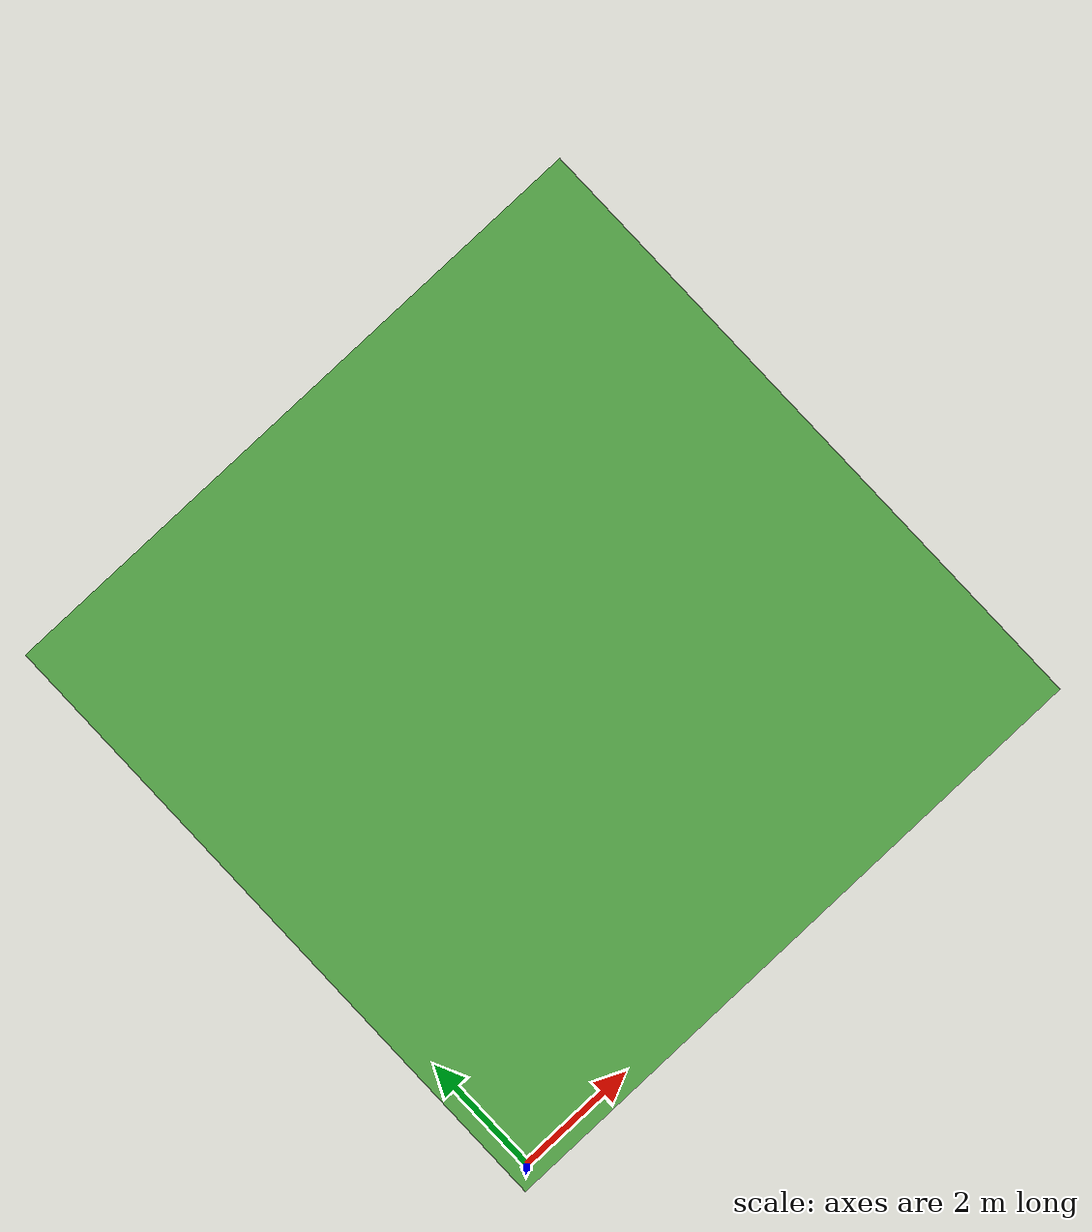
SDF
<?xml version="1.0" ?>
<sdf version="1.6">
  <model name="terrain_with_slope">
    <static>true</static>
    <link name="link">
      <collision name="collision">
        <geometry>
          <mesh>
            <uri>file://models/terrain_with_slope/meshes/terrain.dae</uri>
            <scale>1 1 1</scale>
          </mesh>
        </geometry>
        <surface>
          <friction>
            <ode>
              <mu>1.0</mu>
              <mu2>1.0</mu2>
            </ode>
          </friction>
        </surface>
      </collision>
      <visual name="visual">
        <geometry>
          <mesh>
            <uri>file://models/terrain_with_slope/meshes/terrain.dae</uri>
            <scale>1 1 1</scale>
          </mesh>
        </geometry>
        <material>
          <script>
            <uri>file://media/materials/scripts/gazebo.material</uri>
            <name>Gazebo/Grass</name>
          </script>
        </material>
      </visual>
    </link>
  </model>
</sdf>
